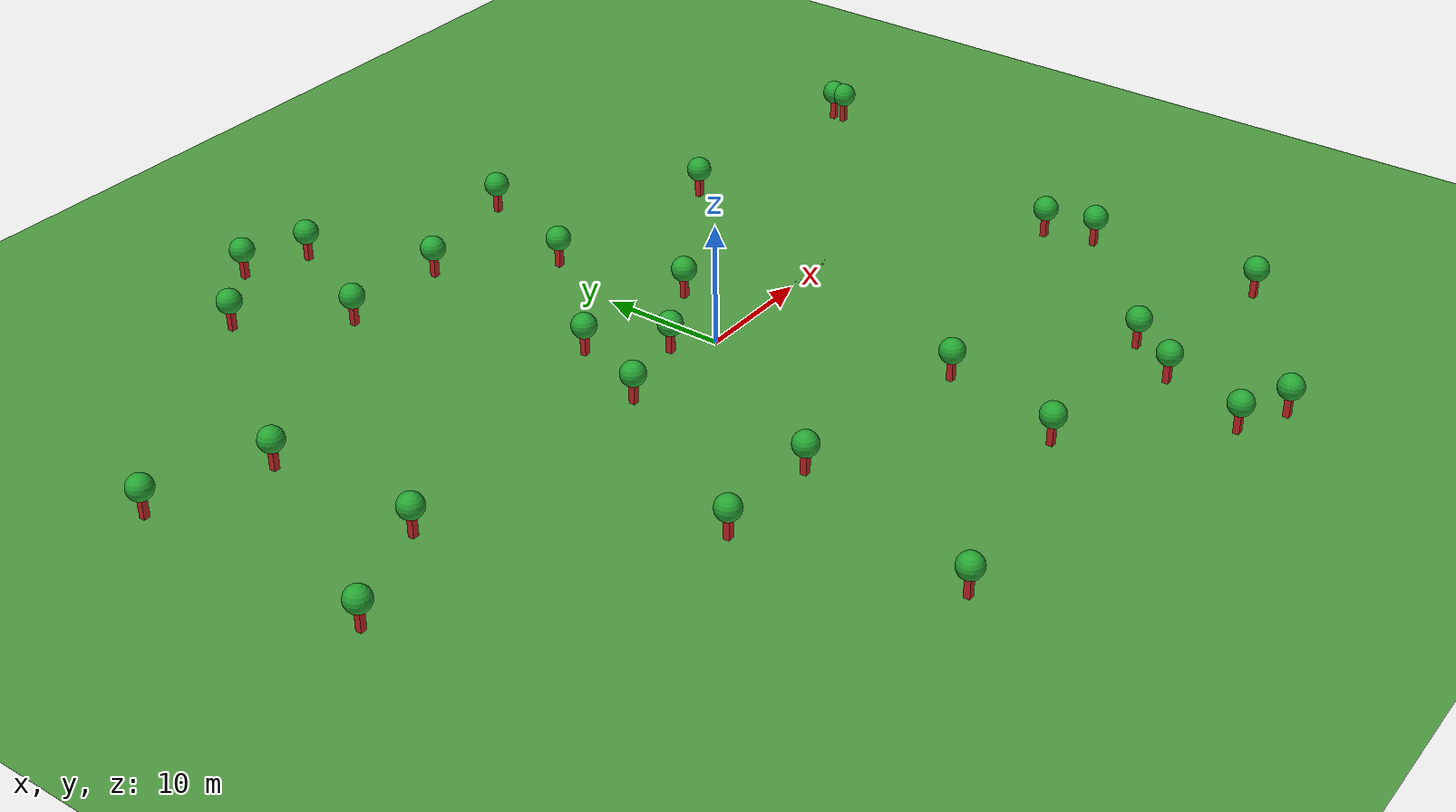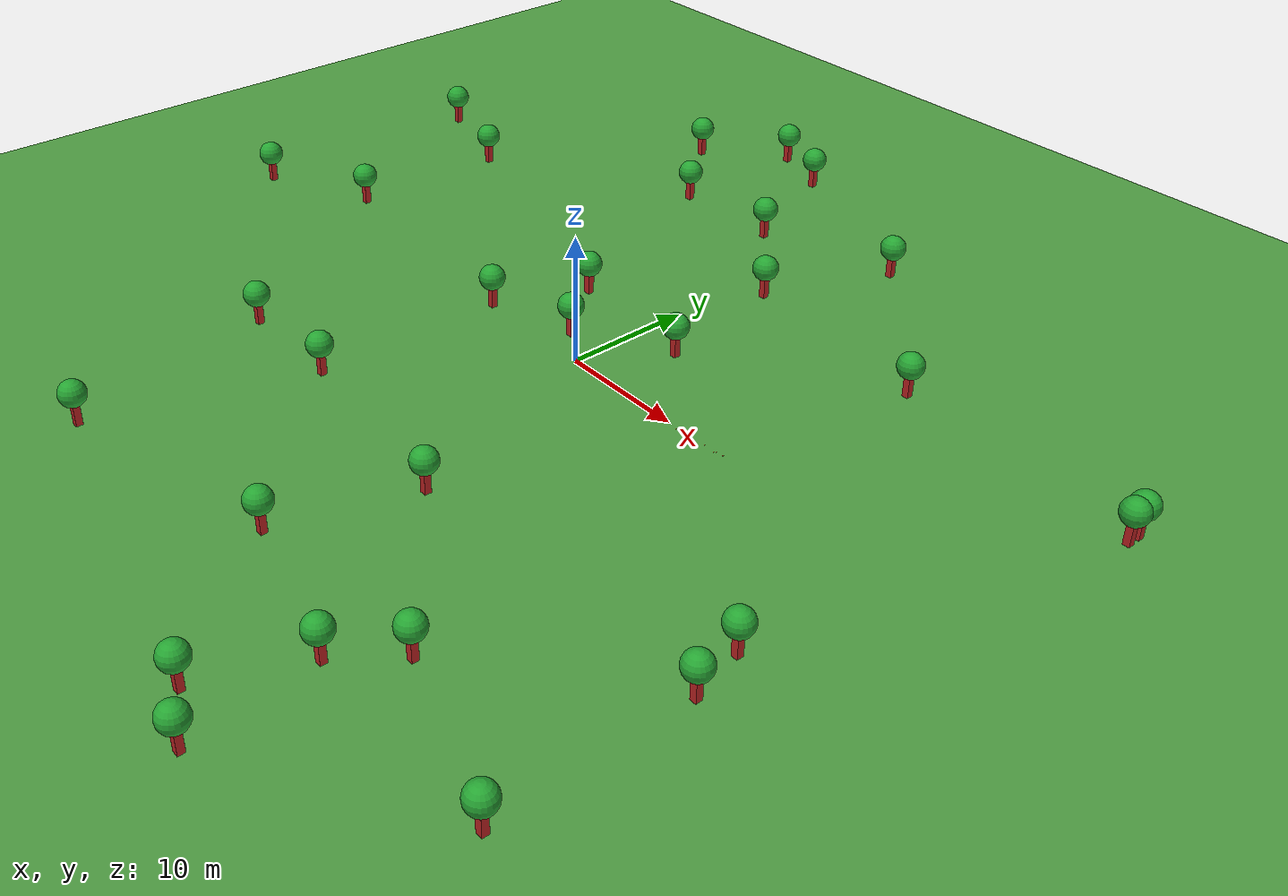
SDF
<?xml version="1.0"?>
<sdf version='1.4'>
    <world name='default'>
<!-- Ciel *************************************************************************************** Ciel -->
	<scene>
		<sky>
			<sunrise>12</sunrise>
			<clouds>4</clouds>
		</sky>
	</scene>
<!-- Soleil *********************************************************************************** Soleil -->
	<include>
    		<uri>model://sun</uri>
		<pose>0.0 0.0 10.0  0 0 0</pose>
	</include>
<!-- Sol *************************************************************************************** Sol -->
        <model name='ground_plane'>
            <static>1</static>
            <link name='link'>
                <collision name='collision'>
                    <geometry>
                        <plane>
                            <normal>0 0 1</normal>
                            <size>1000 1000</size>
                        </plane>
                    </geometry>
                    <surface>
                        <friction>
                            <ode>
                                <mu>100</mu>
                                <mu2>50</mu2>
                            </ode>
                        </friction>
                        <bounce/>
                        <contact>
                            <ode/>
                        </contact>
                    </surface>
                    <max_contacts>10</max_contacts>
                </collision>
                <visual name='visual'>
                    <cast_shadows>0</cast_shadows>
                    <geometry>
                        <plane>
                            <normal>0 0 1</normal>
                            <size>100 100</size>
                        </plane>
                    </geometry>
                    <material>
                        <script>
                            <uri>file://media/materials/scripts/gazebo.material</uri>
                            <name>Gazebo/Grass</name>
                        </script>
                    </material>
                </visual>
                <velocity_decay>
                    <linear>0</linear>
                    <angular>0</angular>
                </velocity_decay>
                <self_collide>0</self_collide>
                <kinematic>0</kinematic>
                <gravity>1</gravity>
            </link>
        </model>

<!-- Obstacles ************************************************************************************************** Obstacles -->

	<!-- Arbres ********************************************************************* Arbres -->
	<model name='obstacles'>
		<static>1</static>
		<link name="tronc_0">
			<pose> 18 -26 1.0  0 0 0</pose>
			<visual name="visual">
				<geometry>
					<box>
						<size>0.5 0.5 2.0</size>
					</box>
				</geometry>
				<material>
					<ambient>0.4 0.3 0.2 1</ambient>
					<diffuse>0.3 0.2 0.1 1</diffuse>
					<specular>0.1 0.1 0.1 1</specular>
					<emissive>0 0 0 0</emissive>
					<script>
                            			<uri>file://media/materials/scripts/gazebo.material</uri>
                            			<name>Gazebo/Red</name>
                        		</script>
				</material>
			</visual>
			<collision name="collision">
				<geometry>
					<box>
						<size>0.5 0.5 2.0</size>
					</box>
				</geometry>
			</collision>
		</link>
		<link name="feuillage_0">
			<pose> 18 -26 2.5  0 0 0</pose>
			<visual name="visual">
				<geometry>
					<sphere>
						<size>6.0</size>
					</sphere>
				</geometry>
				<material>
					<script>
                            			<uri>file://media/materials/scripts/gazebo.material</uri>
                            			<name>Gazebo/Green</name>
                        		</script>
				</material>
			</visual>
		</link>
		<link name="tronc_1">
			<pose> -3 2 1.0  0 0 0</pose>
			<visual name="visual">
				<geometry>
					<box>
						<size>0.5 0.5 2.0</size>
					</box>
				</geometry>
				<material>
					<ambient>0.4 0.3 0.2 1</ambient>
					<diffuse>0.3 0.2 0.1 1</diffuse>
					<specular>0.1 0.1 0.1 1</specular>
					<emissive>0 0 0 0</emissive>
					<script>
                            			<uri>file://media/materials/scripts/gazebo.material</uri>
                            			<name>Gazebo/Red</name>
                        		</script>
				</material>
			</visual>
			<collision name="collision">
				<geometry>
					<box>
						<size>0.5 0.5 2.0</size>
					</box>
				</geometry>
			</collision>
		</link>
		<link name="feuillage_1">
			<pose> -3 2 2.5  0 0 0</pose>
			<visual name="visual">
				<geometry>
					<sphere>
						<size>6.0</size>
					</sphere>
				</geometry>
				<material>
					<script>
                            			<uri>file://media/materials/scripts/gazebo.material</uri>
                            			<name>Gazebo/Green</name>
                        		</script>
				</material>
			</visual>
		</link>
		<link name="tronc_2">
			<pose> 15 -30 1.0  0 0 0</pose>
			<visual name="visual">
				<geometry>
					<box>
						<size>0.5 0.5 2.0</size>
					</box>
				</geometry>
				<material>
					<ambient>0.4 0.3 0.2 1</ambient>
					<diffuse>0.3 0.2 0.1 1</diffuse>
					<specular>0.1 0.1 0.1 1</specular>
					<emissive>0 0 0 0</emissive>
					<script>
                            			<uri>file://media/materials/scripts/gazebo.material</uri>
                            			<name>Gazebo/Red</name>
                        		</script>
				</material>
			</visual>
			<collision name="collision">
				<geometry>
					<box>
						<size>0.5 0.5 2.0</size>
					</box>
				</geometry>
			</collision>
		</link>
		<link name="feuillage_2">
			<pose> 15 -30 2.5  0 0 0</pose>
			<visual name="visual">
				<geometry>
					<sphere>
						<size>6.0</size>
					</sphere>
				</geometry>
				<material>
					<script>
                            			<uri>file://media/materials/scripts/gazebo.material</uri>
                            			<name>Gazebo/Green</name>
                        		</script>
				</material>
			</visual>
		</link>
		<link name="tronc_3">
			<pose> 3 -27 1.0  0 0 0</pose>
			<visual name="visual">
				<geometry>
					<box>
						<size>0.5 0.5 2.0</size>
					</box>
				</geometry>
				<material>
					<ambient>0.4 0.3 0.2 1</ambient>
					<diffuse>0.3 0.2 0.1 1</diffuse>
					<specular>0.1 0.1 0.1 1</specular>
					<emissive>0 0 0 0</emissive>
					<script>
                            			<uri>file://media/materials/scripts/gazebo.material</uri>
                            			<name>Gazebo/Red</name>
                        		</script>
				</material>
			</visual>
			<collision name="collision">
				<geometry>
					<box>
						<size>0.5 0.5 2.0</size>
					</box>
				</geometry>
			</collision>
		</link>
		<link name="feuillage_3">
			<pose> 3 -27 2.5  0 0 0</pose>
			<visual name="visual">
				<geometry>
					<sphere>
						<size>6.0</size>
					</sphere>
				</geometry>
				<material>
					<script>
                            			<uri>file://media/materials/scripts/gazebo.material</uri>
                            			<name>Gazebo/Green</name>
                        		</script>
				</material>
			</visual>
		</link>
		<link name="tronc_4">
			<pose> -14 24 1.0  0 0 0</pose>
			<visual name="visual">
				<geometry>
					<box>
						<size>0.5 0.5 2.0</size>
					</box>
				</geometry>
				<material>
					<ambient>0.4 0.3 0.2 1</ambient>
					<diffuse>0.3 0.2 0.1 1</diffuse>
					<specular>0.1 0.1 0.1 1</specular>
					<emissive>0 0 0 0</emissive>
					<script>
                            			<uri>file://media/materials/scripts/gazebo.material</uri>
                            			<name>Gazebo/Red</name>
                        		</script>
				</material>
			</visual>
			<collision name="collision">
				<geometry>
					<box>
						<size>0.5 0.5 2.0</size>
					</box>
				</geometry>
			</collision>
		</link>
		<link name="feuillage_4">
			<pose> -14 24 2.5  0 0 0</pose>
			<visual name="visual">
				<geometry>
					<sphere>
						<size>6.0</size>
					</sphere>
				</geometry>
				<material>
					<script>
                            			<uri>file://media/materials/scripts/gazebo.material</uri>
                            			<name>Gazebo/Green</name>
                        		</script>
				</material>
			</visual>
		</link>
		<link name="tronc_5">
			<pose> -19 -15 1.0  0 0 0</pose>
			<visual name="visual">
				<geometry>
					<box>
						<size>0.5 0.5 2.0</size>
					</box>
				</geometry>
				<material>
					<ambient>0.4 0.3 0.2 1</ambient>
					<diffuse>0.3 0.2 0.1 1</diffuse>
					<specular>0.1 0.1 0.1 1</specular>
					<emissive>0 0 0 0</emissive>
					<script>
                            			<uri>file://media/materials/scripts/gazebo.material</uri>
                            			<name>Gazebo/Red</name>
                        		</script>
				</material>
			</visual>
			<collision name="collision">
				<geometry>
					<box>
						<size>0.5 0.5 2.0</size>
					</box>
				</geometry>
			</collision>
		</link>
		<link name="feuillage_5">
			<pose> -19 -15 2.5  0 0 0</pose>
			<visual name="visual">
				<geometry>
					<sphere>
						<size>6.0</size>
					</sphere>
				</geometry>
				<material>
					<script>
                            			<uri>file://media/materials/scripts/gazebo.material</uri>
                            			<name>Gazebo/Green</name>
                        		</script>
				</material>
			</visual>
		</link>
		<link name="tronc_6">
			<pose> -15 -31 1.0  0 0 0</pose>
			<visual name="visual">
				<geometry>
					<box>
						<size>0.5 0.5 2.0</size>
					</box>
				</geometry>
				<material>
					<ambient>0.4 0.3 0.2 1</ambient>
					<diffuse>0.3 0.2 0.1 1</diffuse>
					<specular>0.1 0.1 0.1 1</specular>
					<emissive>0 0 0 0</emissive>
					<script>
                            			<uri>file://media/materials/scripts/gazebo.material</uri>
                            			<name>Gazebo/Red</name>
                        		</script>
				</material>
			</visual>
			<collision name="collision">
				<geometry>
					<box>
						<size>0.5 0.5 2.0</size>
					</box>
				</geometry>
			</collision>
		</link>
		<link name="feuillage_6">
			<pose> -15 -31 2.5  0 0 0</pose>
			<visual name="visual">
				<geometry>
					<sphere>
						<size>6.0</size>
					</sphere>
				</geometry>
				<material>
					<script>
                            			<uri>file://media/materials/scripts/gazebo.material</uri>
                            			<name>Gazebo/Green</name>
                        		</script>
				</material>
			</visual>
		</link>
		<link name="tronc_7">
			<pose> -31 2 1.0  0 0 0</pose>
			<visual name="visual">
				<geometry>
					<box>
						<size>0.5 0.5 2.0</size>
					</box>
				</geometry>
				<material>
					<ambient>0.4 0.3 0.2 1</ambient>
					<diffuse>0.3 0.2 0.1 1</diffuse>
					<specular>0.1 0.1 0.1 1</specular>
					<emissive>0 0 0 0</emissive>
					<script>
                            			<uri>file://media/materials/scripts/gazebo.material</uri>
                            			<name>Gazebo/Red</name>
                        		</script>
				</material>
			</visual>
			<collision name="collision">
				<geometry>
					<box>
						<size>0.5 0.5 2.0</size>
					</box>
				</geometry>
			</collision>
		</link>
		<link name="feuillage_7">
			<pose> -31 2 2.5  0 0 0</pose>
			<visual name="visual">
				<geometry>
					<sphere>
						<size>6.0</size>
					</sphere>
				</geometry>
				<material>
					<script>
                            			<uri>file://media/materials/scripts/gazebo.material</uri>
                            			<name>Gazebo/Green</name>
                        		</script>
				</material>
			</visual>
		</link>
		<link name="tronc_8">
			<pose> -10 -15 1.0  0 0 0</pose>
			<visual name="visual">
				<geometry>
					<box>
						<size>0.5 0.5 2.0</size>
					</box>
				</geometry>
				<material>
					<ambient>0.4 0.3 0.2 1</ambient>
					<diffuse>0.3 0.2 0.1 1</diffuse>
					<specular>0.1 0.1 0.1 1</specular>
					<emissive>0 0 0 0</emissive>
					<script>
                            			<uri>file://media/materials/scripts/gazebo.material</uri>
                            			<name>Gazebo/Red</name>
                        		</script>
				</material>
			</visual>
			<collision name="collision">
				<geometry>
					<box>
						<size>0.5 0.5 2.0</size>
					</box>
				</geometry>
			</collision>
		</link>
		<link name="feuillage_8">
			<pose> -10 -15 2.5  0 0 0</pose>
			<visual name="visual">
				<geometry>
					<sphere>
						<size>6.0</size>
					</sphere>
				</geometry>
				<material>
					<script>
                            			<uri>file://media/materials/scripts/gazebo.material</uri>
                            			<name>Gazebo/Green</name>
                        		</script>
				</material>
			</visual>
		</link>
		<link name="tronc_9">
			<pose> -40 18 1.0  0 0 0</pose>
			<visual name="visual">
				<geometry>
					<box>
						<size>0.5 0.5 2.0</size>
					</box>
				</geometry>
				<material>
					<ambient>0.4 0.3 0.2 1</ambient>
					<diffuse>0.3 0.2 0.1 1</diffuse>
					<specular>0.1 0.1 0.1 1</specular>
					<emissive>0 0 0 0</emissive>
					<script>
                            			<uri>file://media/materials/scripts/gazebo.material</uri>
                            			<name>Gazebo/Red</name>
                        		</script>
				</material>
			</visual>
			<collision name="collision">
				<geometry>
					<box>
						<size>0.5 0.5 2.0</size>
					</box>
				</geometry>
			</collision>
		</link>
		<link name="feuillage_9">
			<pose> -40 18 2.5  0 0 0</pose>
			<visual name="visual">
				<geometry>
					<sphere>
						<size>6.0</size>
					</sphere>
				</geometry>
				<material>
					<script>
                            			<uri>file://media/materials/scripts/gazebo.material</uri>
                            			<name>Gazebo/Green</name>
                        		</script>
				</material>
			</visual>
		</link>
		<link name="tronc_10">
			<pose> -10 0 1.0  0 0 0</pose>
			<visual name="visual">
				<geometry>
					<box>
						<size>0.5 0.5 2.0</size>
					</box>
				</geometry>
				<material>
					<ambient>0.4 0.3 0.2 1</ambient>
					<diffuse>0.3 0.2 0.1 1</diffuse>
					<specular>0.1 0.1 0.1 1</specular>
					<emissive>0 0 0 0</emissive>
					<script>
                            			<uri>file://media/materials/scripts/gazebo.material</uri>
                            			<name>Gazebo/Red</name>
                        		</script>
				</material>
			</visual>
			<collision name="collision">
				<geometry>
					<box>
						<size>0.5 0.5 2.0</size>
					</box>
				</geometry>
			</collision>
		</link>
		<link name="feuillage_10">
			<pose> -10 0 2.5  0 0 0</pose>
			<visual name="visual">
				<geometry>
					<sphere>
						<size>6.0</size>
					</sphere>
				</geometry>
				<material>
					<script>
                            			<uri>file://media/materials/scripts/gazebo.material</uri>
                            			<name>Gazebo/Green</name>
                        		</script>
				</material>
			</visual>
		</link>

		<link name="tronc_11">
			<pose> 12 -37 1.0  0 0 0</pose>
			<visual name="visual">
				<geometry>
					<box>
						<size>0.5 0.5 2.0</size>
					</box>
				</geometry>
				<material>
					<ambient>0.4 0.3 0.2 1</ambient>
					<diffuse>0.3 0.2 0.1 1</diffuse>
					<specular>0.1 0.1 0.1 1</specular>
					<emissive>0 0 0 0</emissive>
					<script>
                            			<uri>file://media/materials/scripts/gazebo.material</uri>
                            			<name>Gazebo/Red</name>
                        		</script>
				</material>
			</visual>
			<collision name="collision">
				<geometry>
					<box>
						<size>0.5 0.5 2.0</size>
					</box>
				</geometry>
			</collision>
		</link>
		<link name="feuillage_11">
			<pose> 12 -37 2.5  0 0 0</pose>
			<visual name="visual">
				<geometry>
					<sphere>
						<size>6.0</size>
					</sphere>
				</geometry>
				<material>
					<script>
                            			<uri>file://media/materials/scripts/gazebo.material</uri>
                            			<name>Gazebo/Green</name>
                        		</script>
				</material>
			</visual>
		</link>
		<link name="tronc_12">
			<pose> 16 -39 1.0  0 0 0</pose>
			<visual name="visual">
				<geometry>
					<box>
						<size>0.5 0.5 2.0</size>
					</box>
				</geometry>
				<material>
					<ambient>0.4 0.3 0.2 1</ambient>
					<diffuse>0.3 0.2 0.1 1</diffuse>
					<specular>0.1 0.1 0.1 1</specular>
					<emissive>0 0 0 0</emissive>
					<script>
                            			<uri>file://media/materials/scripts/gazebo.material</uri>
                            			<name>Gazebo/Red</name>
                        		</script>
				</material>
			</visual>
			<collision name="collision">
				<geometry>
					<box>
						<size>0.5 0.5 2.0</size>
					</box>
				</geometry>
			</collision>
		</link>
		<link name="feuillage_12">
			<pose> 16 -39 2.5  0 0 0</pose>
			<visual name="visual">
				<geometry>
					<sphere>
						<size>6.0</size>
					</sphere>
				</geometry>
				<material>
					<script>
                            			<uri>file://media/materials/scripts/gazebo.material</uri>
                            			<name>Gazebo/Green</name>
                        		</script>
				</material>
			</visual>
		</link>
		<link name="tronc_13">
			<pose> 18 15 1.0  0 0 0</pose>
			<visual name="visual">
				<geometry>
					<box>
						<size>0.5 0.5 2.0</size>
					</box>
				</geometry>
				<material>
					<ambient>0.4 0.3 0.2 1</ambient>
					<diffuse>0.3 0.2 0.1 1</diffuse>
					<specular>0.1 0.1 0.1 1</specular>
					<emissive>0 0 0 0</emissive>
					<script>
                            			<uri>file://media/materials/scripts/gazebo.material</uri>
                            			<name>Gazebo/Red</name>
                        		</script>
				</material>
			</visual>
			<collision name="collision">
				<geometry>
					<box>
						<size>0.5 0.5 2.0</size>
					</box>
				</geometry>
			</collision>
		</link>
		<link name="feuillage_13">
			<pose> 18 15 2.5  0 0 0</pose>
			<visual name="visual">
				<geometry>
					<sphere>
						<size>6.0</size>
					</sphere>
				</geometry>
				<material>
					<script>
                            			<uri>file://media/materials/scripts/gazebo.material</uri>
                            			<name>Gazebo/Green</name>
                        		</script>
				</material>
			</visual>
		</link>
		<link name="tronc_14">
			<pose> 29 -12 1.0  0 0 0</pose>
			<visual name="visual">
				<geometry>
					<box>
						<size>0.5 0.5 2.0</size>
					</box>
				</geometry>
				<material>
					<ambient>0.4 0.3 0.2 1</ambient>
					<diffuse>0.3 0.2 0.1 1</diffuse>
					<specular>0.1 0.1 0.1 1</specular>
					<emissive>0 0 0 0</emissive>
					<script>
                            			<uri>file://media/materials/scripts/gazebo.material</uri>
                            			<name>Gazebo/Red</name>
                        		</script>
				</material>
			</visual>
			<collision name="collision">
				<geometry>
					<box>
						<size>0.5 0.5 2.0</size>
					</box>
				</geometry>
			</collision>
		</link>
		<link name="feuillage_14">
			<pose> 29 -12 2.5  0 0 0</pose>
			<visual name="visual">
				<geometry>
					<sphere>
						<size>6.0</size>
					</sphere>
				</geometry>
				<material>
					<script>
                            			<uri>file://media/materials/scripts/gazebo.material</uri>
                            			<name>Gazebo/Green</name>
                        		</script>
				</material>
			</visual>
		</link>
		<link name="tronc_15">
			<pose> -14 36 1.0  0 0 0</pose>
			<visual name="visual">
				<geometry>
					<box>
						<size>0.5 0.5 2.0</size>
					</box>
				</geometry>
				<material>
					<ambient>0.4 0.3 0.2 1</ambient>
					<diffuse>0.3 0.2 0.1 1</diffuse>
					<specular>0.1 0.1 0.1 1</specular>
					<emissive>0 0 0 0</emissive>
					<script>
                            			<uri>file://media/materials/scripts/gazebo.material</uri>
                            			<name>Gazebo/Red</name>
                        		</script>
				</material>
			</visual>
			<collision name="collision">
				<geometry>
					<box>
						<size>0.5 0.5 2.0</size>
					</box>
				</geometry>
			</collision>
		</link>
		<link name="feuillage_15">
			<pose> -14 36 2.5  0 0 0</pose>
			<visual name="visual">
				<geometry>
					<sphere>
						<size>6.0</size>
					</sphere>
				</geometry>
				<material>
					<script>
                            			<uri>file://media/materials/scripts/gazebo.material</uri>
                            			<name>Gazebo/Green</name>
                        		</script>
				</material>
			</visual>
		</link>
		<link name="tronc_16">
			<pose> 2 17 1.0  0 0 0</pose>
			<visual name="visual">
				<geometry>
					<box>
						<size>0.5 0.5 2.0</size>
					</box>
				</geometry>
				<material>
					<ambient>0.4 0.3 0.2 1</ambient>
					<diffuse>0.3 0.2 0.1 1</diffuse>
					<specular>0.1 0.1 0.1 1</specular>
					<emissive>0 0 0 0</emissive>
					<script>
                            			<uri>file://media/materials/scripts/gazebo.material</uri>
                            			<name>Gazebo/Red</name>
                        		</script>
				</material>
			</visual>
			<collision name="collision">
				<geometry>
					<box>
						<size>0.5 0.5 2.0</size>
					</box>
				</geometry>
			</collision>
		</link>
		<link name="feuillage_16">
			<pose> 2 17 2.5  0 0 0</pose>
			<visual name="visual">
				<geometry>
					<sphere>
						<size>6.0</size>
					</sphere>
				</geometry>
				<material>
					<script>
                            			<uri>file://media/materials/scripts/gazebo.material</uri>
                            			<name>Gazebo/Green</name>
                        		</script>
				</material>
			</visual>
		</link>
		<link name="tronc_17">
			<pose> -5 24 1.0  0 0 0</pose>
			<visual name="visual">
				<geometry>
					<box>
						<size>0.5 0.5 2.0</size>
					</box>
				</geometry>
				<material>
					<ambient>0.4 0.3 0.2 1</ambient>
					<diffuse>0.3 0.2 0.1 1</diffuse>
					<specular>0.1 0.1 0.1 1</specular>
					<emissive>0 0 0 0</emissive>
					<script>
                            			<uri>file://media/materials/scripts/gazebo.material</uri>
                            			<name>Gazebo/Red</name>
                        		</script>
				</material>
			</visual>
			<collision name="collision">
				<geometry>
					<box>
						<size>0.5 0.5 2.0</size>
					</box>
				</geometry>
			</collision>
		</link>
		<link name="feuillage_17">
			<pose> -5 24 2.5  0 0 0</pose>
			<visual name="visual">
				<geometry>
					<sphere>
						<size>6.0</size>
					</sphere>
				</geometry>
				<material>
					<script>
                            			<uri>file://media/materials/scripts/gazebo.material</uri>
                            			<name>Gazebo/Green</name>
                        		</script>
				</material>
			</visual>
		</link>
		<link name="tronc_18">
			<pose> 6 27 1.0  0 0 0</pose>
			<visual name="visual">
				<geometry>
					<box>
						<size>0.5 0.5 2.0</size>
					</box>
				</geometry>
				<material>
					<ambient>0.4 0.3 0.2 1</ambient>
					<diffuse>0.3 0.2 0.1 1</diffuse>
					<specular>0.1 0.1 0.1 1</specular>
					<emissive>0 0 0 0</emissive>
					<script>
                            			<uri>file://media/materials/scripts/gazebo.material</uri>
                            			<name>Gazebo/Red</name>
                        		</script>
				</material>
			</visual>
			<collision name="collision">
				<geometry>
					<box>
						<size>0.5 0.5 2.0</size>
					</box>
				</geometry>
			</collision>
		</link>
		<link name="feuillage_18">
			<pose> 6 27 2.5  0 0 0</pose>
			<visual name="visual">
				<geometry>
					<sphere>
						<size>6.0</size>
					</sphere>
				</geometry>
				<material>
					<script>
                            			<uri>file://media/materials/scripts/gazebo.material</uri>
                            			<name>Gazebo/Green</name>
                        		</script>
				</material>
			</visual>
		</link>
		<link name="tronc_19">
			<pose> 37 13 1.0  0 0 0</pose>
			<visual name="visual">
				<geometry>
					<box>
						<size>0.5 0.5 2.0</size>
					</box>
				</geometry>
				<material>
					<ambient>0.4 0.3 0.2 1</ambient>
					<diffuse>0.3 0.2 0.1 1</diffuse>
					<specular>0.1 0.1 0.1 1</specular>
					<emissive>0 0 0 0</emissive>
					<script>
                            			<uri>file://media/materials/scripts/gazebo.material</uri>
                            			<name>Gazebo/Red</name>
                        		</script>
				</material>
			</visual>
			<collision name="collision">
				<geometry>
					<box>
						<size>0.5 0.5 2.0</size>
					</box>
				</geometry>
			</collision>
		</link>
		<link name="feuillage_19">
			<pose> 37 13 2.5  0 0 0</pose>
			<visual name="visual">
				<geometry>
					<sphere>
						<size>6.0</size>
					</sphere>
				</geometry>
				<material>
					<script>
                            			<uri>file://media/materials/scripts/gazebo.material</uri>
                            			<name>Gazebo/Green</name>
                        		</script>
				</material>
			</visual>
		</link>
		<link name="tronc_20">
			<pose> 30 -30 1.0  0 0 0</pose>
			<visual name="visual">
				<geometry>
					<box>
						<size>0.5 0.5 2.0</size>
					</box>
				</geometry>
				<material>
					<ambient>0.4 0.3 0.2 1</ambient>
					<diffuse>0.3 0.2 0.1 1</diffuse>
					<specular>0.1 0.1 0.1 1</specular>
					<emissive>0 0 0 0</emissive>
					<script>
                            			<uri>file://media/materials/scripts/gazebo.material</uri>
                            			<name>Gazebo/Red</name>
                        		</script>
				</material>
			</visual>
			<collision name="collision">
				<geometry>
					<box>
						<size>0.5 0.5 2.0</size>
					</box>
				</geometry>
			</collision>
		</link>
		<link name="feuillage_20">
			<pose> 30 -30 2.5  0 0 0</pose>
			<visual name="visual">
				<geometry>
					<sphere>
						<size>6.0</size>
					</sphere>
				</geometry>
				<material>
					<script>
                            			<uri>file://media/materials/scripts/gazebo.material</uri>
                            			<name>Gazebo/Green</name>
                        		</script>
				</material>
			</visual>
		</link>
		<link name="tronc_21">
			<pose> -9 34 1.0  0 0 0</pose>
			<visual name="visual">
				<geometry>
					<box>
						<size>0.5 0.5 2.0</size>
					</box>
				</geometry>
				<material>
					<ambient>0.4 0.3 0.2 1</ambient>
					<diffuse>0.3 0.2 0.1 1</diffuse>
					<specular>0.1 0.1 0.1 1</specular>
					<emissive>0 0 0 0</emissive>
					<script>
                            			<uri>file://media/materials/scripts/gazebo.material</uri>
                            			<name>Gazebo/Red</name>
                        		</script>
				</material>
			</visual>
			<collision name="collision">
				<geometry>
					<box>
						<size>0.5 0.5 2.0</size>
					</box>
				</geometry>
			</collision>
		</link>
		<link name="feuillage_21">
			<pose> -9 34 2.5  0 0 0</pose>
			<visual name="visual">
				<geometry>
					<sphere>
						<size>6.0</size>
					</sphere>
				</geometry>
				<material>
					<script>
                            			<uri>file://media/materials/scripts/gazebo.material</uri>
                            			<name>Gazebo/Green</name>
                        		</script>
				</material>
			</visual>
		</link>
		<link name="tronc_22">
			<pose> 30 -16 1.0  0 0 0</pose>
			<visual name="visual">
				<geometry>
					<box>
						<size>0.5 0.5 2.0</size>
					</box>
				</geometry>
				<material>
					<ambient>0.4 0.3 0.2 1</ambient>
					<diffuse>0.3 0.2 0.1 1</diffuse>
					<specular>0.1 0.1 0.1 1</specular>
					<emissive>0 0 0 0</emissive>
					<script>
                            			<uri>file://media/materials/scripts/gazebo.material</uri>
                            			<name>Gazebo/Red</name>
                        		</script>
				</material>
			</visual>
			<collision name="collision">
				<geometry>
					<box>
						<size>0.5 0.5 2.0</size>
					</box>
				</geometry>
			</collision>
		</link>
		<link name="feuillage_22">
			<pose> 30 -16 2.5  0 0 0</pose>
			<visual name="visual">
				<geometry>
					<sphere>
						<size>6.0</size>
					</sphere>
				</geometry>
				<material>
					<script>
                            			<uri>file://media/materials/scripts/gazebo.material</uri>
                            			<name>Gazebo/Green</name>
                        		</script>
				</material>
			</visual>
		</link>
		<link name="tronc_23">
			<pose> -40 -2 1.0  0 0 0</pose>
			<visual name="visual">
				<geometry>
					<box>
						<size>0.5 0.5 2.0</size>
					</box>
				</geometry>
				<material>
					<ambient>0.4 0.3 0.2 1</ambient>
					<diffuse>0.3 0.2 0.1 1</diffuse>
					<specular>0.1 0.1 0.1 1</specular>
					<emissive>0 0 0 0</emissive>
					<script>
                            			<uri>file://media/materials/scripts/gazebo.material</uri>
                            			<name>Gazebo/Red</name>
                        		</script>
				</material>
			</visual>
			<collision name="collision">
				<geometry>
					<box>
						<size>0.5 0.5 2.0</size>
					</box>
				</geometry>
			</collision>
		</link>
		<link name="feuillage_23">
			<pose> -40 -2 2.5  0 0 0</pose>
			<visual name="visual">
				<geometry>
					<sphere>
						<size>6.0</size>
					</sphere>
				</geometry>
				<material>
					<script>
                            			<uri>file://media/materials/scripts/gazebo.material</uri>
                            			<name>Gazebo/Green</name>
                        		</script>
				</material>
			</visual>
		</link>
		<link name="tronc_24">
			<pose> -20 31 1.0  0 0 0</pose>
			<visual name="visual">
				<geometry>
					<box>
						<size>0.5 0.5 2.0</size>
					</box>
				</geometry>
				<material>
					<ambient>0.4 0.3 0.2 1</ambient>
					<diffuse>0.3 0.2 0.1 1</diffuse>
					<specular>0.1 0.1 0.1 1</specular>
					<emissive>0 0 0 0</emissive>
					<script>
                            			<uri>file://media/materials/scripts/gazebo.material</uri>
                            			<name>Gazebo/Red</name>
                        		</script>
				</material>
			</visual>
			<collision name="collision">
				<geometry>
					<box>
						<size>0.5 0.5 2.0</size>
					</box>
				</geometry>
			</collision>
		</link>
		<link name="feuillage_24">
			<pose> -20 31 2.5  0 0 0</pose>
			<visual name="visual">
				<geometry>
					<sphere>
						<size>6.0</size>
					</sphere>
				</geometry>
				<material>
					<script>
                            			<uri>file://media/materials/scripts/gazebo.material</uri>
                            			<name>Gazebo/Green</name>
                        		</script>
				</material>
			</visual>
		</link>
		<link name="tronc_25">
			<pose> -7 7 1.0  0 0 0</pose>
			<visual name="visual">
				<geometry>
					<box>
						<size>0.5 0.5 2.0</size>
					</box>
				</geometry>
				<material>
					<ambient>0.4 0.3 0.2 1</ambient>
					<diffuse>0.3 0.2 0.1 1</diffuse>
					<specular>0.1 0.1 0.1 1</specular>
					<emissive>0 0 0 0</emissive>
					<script>
                            			<uri>file://media/materials/scripts/gazebo.material</uri>
                            			<name>Gazebo/Red</name>
                        		</script>
				</material>
			</visual>
			<collision name="collision">
				<geometry>
					<box>
						<size>0.5 0.5 2.0</size>
					</box>
				</geometry>
			</collision>
		</link>
		<link name="feuillage_25">
			<pose> -7 7 2.5  0 0 0</pose>
			<visual name="visual">
				<geometry>
					<sphere>
						<size>6.0</size>
					</sphere>
				</geometry>
				<material>
					<script>
                            			<uri>file://media/materials/scripts/gazebo.material</uri>
                            			<name>Gazebo/Green</name>
                        		</script>
				</material>
			</visual>
		</link>
		<link name="tronc_26">
			<pose> 4 6 1.0  0 0 0</pose>
			<visual name="visual">
				<geometry>
					<box>
						<size>0.5 0.5 2.0</size>
					</box>
				</geometry>
				<material>
					<ambient>0.4 0.3 0.2 1</ambient>
					<diffuse>0.3 0.2 0.1 1</diffuse>
					<specular>0.1 0.1 0.1 1</specular>
					<emissive>0 0 0 0</emissive>
					<script>
                            			<uri>file://media/materials/scripts/gazebo.material</uri>
                            			<name>Gazebo/Red</name>
                        		</script>
				</material>
			</visual>
			<collision name="collision">
				<geometry>
					<box>
						<size>0.5 0.5 2.0</size>
					</box>
				</geometry>
			</collision>
		</link>
		<link name="feuillage_26">
			<pose> 4 6 2.5  0 0 0</pose>
			<visual name="visual">
				<geometry>
					<sphere>
						<size>6.0</size>
					</sphere>
				</geometry>
				<material>
					<script>
                            			<uri>file://media/materials/scripts/gazebo.material</uri>
                            			<name>Gazebo/Green</name>
                        		</script>
				</material>
			</visual>
		</link>
		<link name="tronc_27">
			<pose> -31 15 1.0  0 0 0</pose>
			<visual name="visual">
				<geometry>
					<box>
						<size>0.5 0.5 2.0</size>
					</box>
				</geometry>
				<material>
					<ambient>0.4 0.3 0.2 1</ambient>
					<diffuse>0.3 0.2 0.1 1</diffuse>
					<specular>0.1 0.1 0.1 1</specular>
					<emissive>0 0 0 0</emissive>
					<script>
                            			<uri>file://media/materials/scripts/gazebo.material</uri>
                            			<name>Gazebo/Red</name>
                        		</script>
				</material>
			</visual>
			<collision name="collision">
				<geometry>
					<box>
						<size>0.5 0.5 2.0</size>
					</box>
				</geometry>
			</collision>
		</link>
		<link name="feuillage_27">
			<pose> -31 15 2.5  0 0 0</pose>
			<visual name="visual">
				<geometry>
					<sphere>
						<size>6.0</size>
					</sphere>
				</geometry>
				<material>
					<script>
                            			<uri>file://media/materials/scripts/gazebo.material</uri>
                            			<name>Gazebo/Green</name>
                        		</script>
				</material>
			</visual>
		</link>
		<link name="tronc_28">
			<pose> 6 -17 1.0  0 0 0</pose>
			<visual name="visual">
				<geometry>
					<box>
						<size>0.5 0.5 2.0</size>
					</box>
				</geometry>
				<material>
					<ambient>0.4 0.3 0.2 1</ambient>
					<diffuse>0.3 0.2 0.1 1</diffuse>
					<specular>0.1 0.1 0.1 1</specular>
					<emissive>0 0 0 0</emissive>
					<script>
                            			<uri>file://media/materials/scripts/gazebo.material</uri>
                            			<name>Gazebo/Red</name>
                        		</script>
				</material>
			</visual>
			<collision name="collision">
				<geometry>
					<box>
						<size>0.5 0.5 2.0</size>
					</box>
				</geometry>
			</collision>
		</link>
		<link name="feuillage_28">
			<pose> 6 -17 2.5  0 0 0</pose>
			<visual name="visual">
				<geometry>
					<sphere>
						<size>6.0</size>
					</sphere>
				</geometry>
				<material>
					<script>
                            			<uri>file://media/materials/scripts/gazebo.material</uri>
                            			<name>Gazebo/Green</name>
                        		</script>
				</material>
			</visual>
		</link>
		<link name="tronc_29">
			<pose> 37 14 1.0  0 0 0</pose>
			<visual name="visual">
				<geometry>
					<box>
						<size>0.5 0.5 2.0</size>
					</box>
				</geometry>
				<material>
					<ambient>0.4 0.3 0.2 1</ambient>
					<diffuse>0.3 0.2 0.1 1</diffuse>
					<specular>0.1 0.1 0.1 1</specular>
					<emissive>0 0 0 0</emissive>
					<script>
                            			<uri>file://media/materials/scripts/gazebo.material</uri>
                            			<name>Gazebo/Red</name>
                        		</script>
				</material>
			</visual>
			<collision name="collision">
				<geometry>
					<box>
						<size>0.5 0.5 2.0</size>
					</box>
				</geometry>
			</collision>
		</link>
		<link name="feuillage_29">
			<pose> 37 14 2.5  0 0 0</pose>
			<visual name="visual">
				<geometry>
					<sphere>
						<size>6.0</size>
					</sphere>
				</geometry>
				<material>
					<script>
                            			<uri>file://media/materials/scripts/gazebo.material</uri>
                            			<name>Gazebo/Green</name>
                        		</script>
				</material>
			</visual>
		</link>
	<!-- Citrouilles ********************************************************************* Citrouilles -->
		<link name="citrouille">
			<pose> 15 0.2 0 0 0 0</pose>
			<visual name="visual">
				<geometry>
					<mesh>
						<uri>
							file:///home/dorian/ROS1/cours_ws/src/my_robot/my_robot_gazebo/world/meshes/pumpkin.STL
						</uri>
					</mesh>
				</geometry>
				<material>
					<script>
                            			<uri>file://media/materials/scripts/gazebo.material</uri>
                            			<name>Gazebo/Orange</name>
                        		</script>
				</material>
			</visual>
		</link>
		<link name="citrouille_0">
			<pose> 5.613 -0.013 0  0 0 0</pose>
			<visual name="visual">
				<geometry>
					<mesh>
						<uri>
							file:///home/dorian/ROS1/cours_ws/src/my_robot/my_robot_gazebo/world/meshes/pumpkin.STL
						</uri>
					</mesh>
				</geometry>
				<material>
					<script>
                            			<uri>file://media/materials/scripts/gazebo.material</uri>
                            			<name>Gazebo/Orange</name>
                        		</script>
				</material>
			</visual>
		</link>
		<link name="citrouille_1">
			<pose> 7.562 -0.064 0  0 0 0</pose>
			<visual name="visual">
				<geometry>
					<mesh>
						<uri>
							file:///home/dorian/ROS1/cours_ws/src/my_robot/my_robot_gazebo/world/meshes/pumpkin.STL
						</uri>
					</mesh>
				</geometry>
				<material>
					<script>
                            			<uri>file://media/materials/scripts/gazebo.material</uri>
                            			<name>Gazebo/Orange</name>
                        		</script>
				</material>
			</visual>
		</link>
		<link name="citrouille_2">
			<pose> 13.404 0.034 0  0 0 0</pose>
			<visual name="visual">
				<geometry>
					<mesh>
						<uri>
							file:///home/dorian/ROS1/cours_ws/src/my_robot/my_robot_gazebo/world/meshes/pumpkin.STL
						</uri>
					</mesh>
				</geometry>
				<material>
					<script>
                            			<uri>file://media/materials/scripts/gazebo.material</uri>
                            			<name>Gazebo/Orange</name>
                        		</script>
				</material>
			</visual>
		</link>
		<link name="citrouille_3">
			<pose> 11.34 -0.093 0  0 0 0</pose>
			<visual name="visual">
				<geometry>
					<mesh>
						<uri>
							file:///home/dorian/ROS1/cours_ws/src/my_robot/my_robot_gazebo/world/meshes/pumpkin.STL
						</uri>
					</mesh>
				</geometry>
				<material>
					<script>
                            			<uri>file://media/materials/scripts/gazebo.material</uri>
                            			<name>Gazebo/Orange</name>
                        		</script>
				</material>
			</visual>
		</link>
		<link name="citrouille_4">
			<pose> 10.862 -0.18 0  0 0 0</pose>
			<visual name="visual">
				<geometry>
					<mesh>
						<uri>
							file:///home/dorian/ROS1/cours_ws/src/my_robot/my_robot_gazebo/world/meshes/pumpkin.STL
						</uri>
					</mesh>
				</geometry>
				<material>
					<script>
                            			<uri>file://media/materials/scripts/gazebo.material</uri>
                            			<name>Gazebo/Orange</name>
                        		</script>
				</material>
			</visual>
		</link>
		<link name="citrouille_5">
			<pose> 1.777 -0.187 0  0 0 0</pose>
			<visual name="visual">
				<geometry>
					<mesh>
						<uri>
							file:///home/dorian/ROS1/cours_ws/src/my_robot/my_robot_gazebo/world/meshes/pumpkin.STL
						</uri>
					</mesh>
				</geometry>
				<material>
					<script>
                            			<uri>file://media/materials/scripts/gazebo.material</uri>
                            			<name>Gazebo/Orange</name>
                        		</script>
				</material>
			</visual>
		</link>
		<link name="citrouille_6">
			<pose> 9.663 -0.025 0  0 0 0</pose>
			<visual name="visual">
				<geometry>
					<mesh>
						<uri>
							file:///home/dorian/ROS1/cours_ws/src/my_robot/my_robot_gazebo/world/meshes/pumpkin.STL
						</uri>
					</mesh>
				</geometry>
				<material>
					<script>
                            			<uri>file://media/materials/scripts/gazebo.material</uri>
                            			<name>Gazebo/Orange</name>
                        		</script>
				</material>
			</visual>
		</link>
		<link name="citrouille_7">
			<pose> 10.898 0.187 0  0 0 0</pose>
			<visual name="visual">
				<geometry>
					<mesh>
						<uri>
							file:///home/dorian/ROS1/cours_ws/src/my_robot/my_robot_gazebo/world/meshes/pumpkin.STL
						</uri>
					</mesh>
				</geometry>
				<material>
					<script>
                            			<uri>file://media/materials/scripts/gazebo.material</uri>
                            			<name>Gazebo/Orange</name>
                        		</script>
				</material>
			</visual>
		</link>
		<link name="citrouille_8">
			<pose> 14.466 0.102 0  0 0 0</pose>
			<visual name="visual">
				<geometry>
					<mesh>
						<uri>
							file:///home/dorian/ROS1/cours_ws/src/my_robot/my_robot_gazebo/world/meshes/pumpkin.STL
						</uri>
					</mesh>
				</geometry>
				<material>
					<script>
                            			<uri>file://media/materials/scripts/gazebo.material</uri>
                            			<name>Gazebo/Orange</name>
                        		</script>
				</material>
			</visual>
		</link>
		<link name="citrouille_9">
			<pose> 14.356 -0.052 0  0 0 0</pose>
			<visual name="visual">
				<geometry>
					<mesh>
						<uri>
							file:///home/dorian/ROS1/cours_ws/src/my_robot/my_robot_gazebo/world/meshes/pumpkin.STL
						</uri>
					</mesh>
				</geometry>
				<material>
					<script>
                            			<uri>file://media/materials/scripts/gazebo.material</uri>
                            			<name>Gazebo/Orange</name>
                        		</script>
				</material>
			</visual>
		</link>
	</model>
    </world>
<plugin name="plugins" filename="libplugins.so"/>
</sdf>
